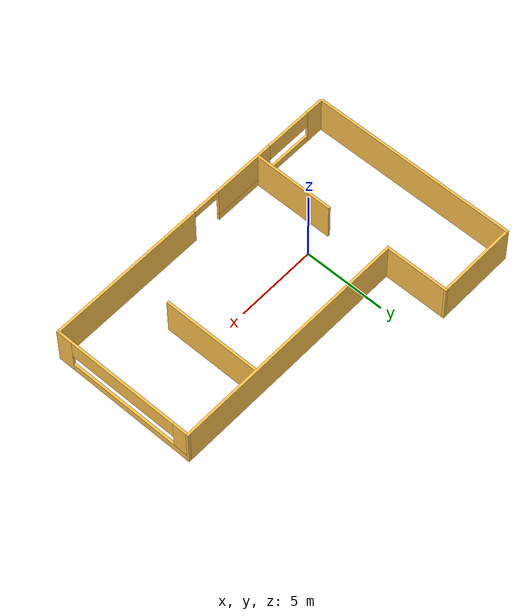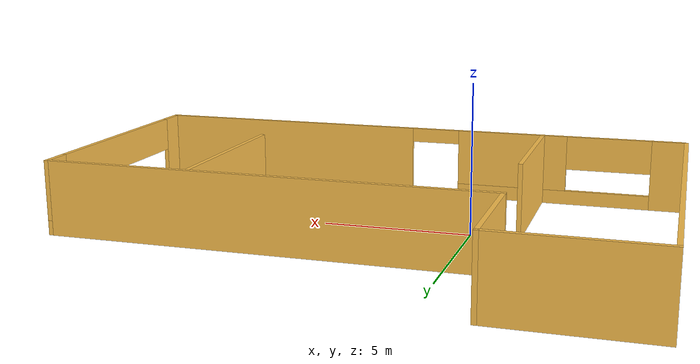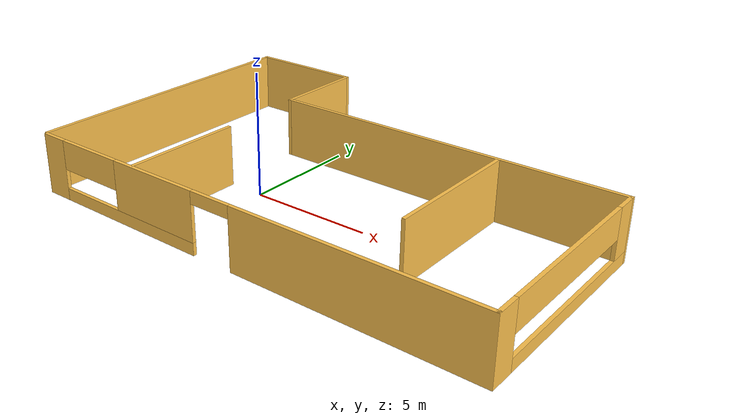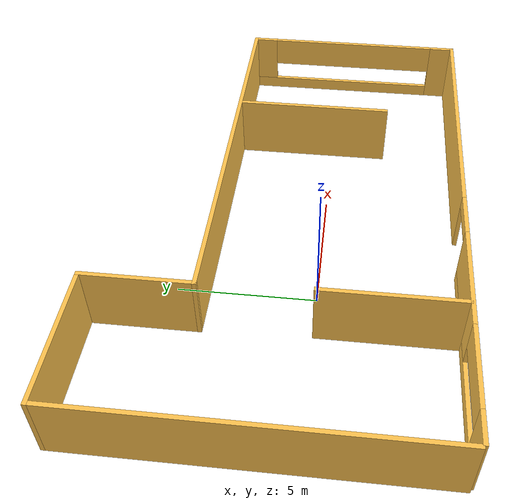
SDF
<?xml version='1.0'?>
<sdf version='1.6'>
  <model name='Building'>
    <pose frame=''>3.27386 1.36884 0 0 -0 0</pose>
    <link name='Wall_0'>
      <pose frame=''>0.05 -6.35 0 0 -0 0</pose>
      <visual name='Wall_0_Visual_0'>
        <pose frame=''>-9.30666 0 1.25 0 -0 0</pose>
        <geometry>
          <box>
            <size>1.13668 0.15 2.5</size>
          </box>
        </geometry>
        <material>
          <script>
            <uri>file://media/materials/scripts/gazebo.material</uri>
            <name>Gazebo/Grey</name>
          </script>
          <ambient>1 0.764706 0.305882 1</ambient>
        </material>
        <meta>
          <layer>0</layer>
        </meta>
      </visual>
      <collision name='Wall_0_Collision_0'>
        <geometry>
          <box>
            <size>1.13668 0.15 2.5</size>
          </box>
        </geometry>
        <pose frame=''>-9.30666 0 1.25 0 -0 0</pose>
      </collision>
      <visual name='Wall_0_Visual_1'>
        <pose frame=''>4.90959 0 1.25 0 -0 0</pose>
        <geometry>
          <box>
            <size>9.93081 0.15 2.5</size>
          </box>
        </geometry>
        <material>
          <script>
            <uri>file://media/materials/scripts/gazebo.material</uri>
            <name>Gazebo/Grey</name>
          </script>
          <ambient>1 0.764706 0.305882 1</ambient>
        </material>
        <meta>
          <layer>0</layer>
        </meta>
      </visual>
      <collision name='Wall_0_Collision_1'>
        <geometry>
          <box>
            <size>9.93081 0.15 2.5</size>
          </box>
        </geometry>
        <pose frame=''>4.90959 0 1.25 0 -0 0</pose>
      </collision>
      <visual name='Wall_0_Visual_2'>
        <pose frame=''>-5.27291 0 0.25 0 -0 0</pose>
        <geometry>
          <box>
            <size>6.93082 0.15 0.5</size>
          </box>
        </geometry>
        <material>
          <script>
            <uri>file://media/materials/scripts/gazebo.material</uri>
            <name>Gazebo/Grey</name>
          </script>
          <ambient>1 0.764706 0.305882 1</ambient>
        </material>
        <meta>
          <layer>0</layer>
        </meta>
      </visual>
      <collision name='Wall_0_Collision_2'>
        <geometry>
          <box>
            <size>6.93082 0.15 0.5</size>
          </box>
        </geometry>
        <pose frame=''>-5.27291 0 0.25 0 -0 0</pose>
      </collision>
      <visual name='Wall_0_Visual_3'>
        <pose frame=''>-3.79309 0 1.5 0 -0 0</pose>
        <geometry>
          <box>
            <size>3.97117 0.15 2</size>
          </box>
        </geometry>
        <material>
          <script>
            <uri>file://media/materials/scripts/gazebo.material</uri>
            <name>Gazebo/Grey</name>
          </script>
          <ambient>1 0.764706 0.305882 1</ambient>
        </material>
        <meta>
          <layer>0</layer>
        </meta>
      </visual>
      <collision name='Wall_0_Collision_3'>
        <geometry>
          <box>
            <size>3.97117 0.15 2</size>
          </box>
        </geometry>
        <pose frame=''>-3.79309 0 1.5 0 -0 0</pose>
      </collision>
      <visual name='Wall_0_Visual_4'>
        <pose frame=''>-7.2585 0 1.9 0 -0 0</pose>
        <geometry>
          <box>
            <size>2.95964 0.15 1.2</size>
          </box>
        </geometry>
        <material>
          <script>
            <uri>file://media/materials/scripts/gazebo.material</uri>
            <name>Gazebo/Grey</name>
          </script>
          <ambient>1 0.764706 0.305882 1</ambient>
        </material>
        <meta>
          <layer>0</layer>
        </meta>
      </visual>
      <collision name='Wall_0_Collision_4'>
        <geometry>
          <box>
            <size>2.95964 0.15 1.2</size>
          </box>
        </geometry>
        <pose frame=''>-7.2585 0 1.9 0 -0 0</pose>
      </collision>
      <visual name='Wall_0_Visual_5'>
        <pose frame=''>-0.931658 0 2.25 0 -0 0</pose>
        <geometry>
          <box>
            <size>1.75169 0.15 0.5</size>
          </box>
        </geometry>
        <material>
          <script>
            <uri>file://media/materials/scripts/gazebo.material</uri>
            <name>Gazebo/Grey</name>
          </script>
          <ambient>1 0.764706 0.305882 1</ambient>
        </material>
        <meta>
          <layer>0</layer>
        </meta>
      </visual>
      <collision name='Wall_0_Collision_5'>
        <geometry>
          <box>
            <size>1.75169 0.15 0.5</size>
          </box>
        </geometry>
        <pose frame=''>-0.931658 0 2.25 0 -0 0</pose>
      </collision>
    </link>
    <link name='Wall_1'>
      <pose frame=''>9.85 -1.925 0 0 -0 1.5708</pose>
      <visual name='Wall_1_Visual_0'>
        <pose frame=''>-3.98341 0 1.25 0 -0 0</pose>
        <geometry>
          <box>
            <size>1.03318 0.15 2.5</size>
          </box>
        </geometry>
        <material>
          <script>
            <uri>file://media/materials/scripts/gazebo.material</uri>
            <name>Gazebo/Grey</name>
          </script>
          <ambient>1 0.764706 0.305882 1</ambient>
        </material>
        <meta>
          <layer>0</layer>
        </meta>
      </visual>
      <collision name='Wall_1_Collision_0'>
        <geometry>
          <box>
            <size>1.03318 0.15 2.5</size>
          </box>
        </geometry>
        <pose frame=''>-3.98341 0 1.25 0 -0 0</pose>
      </collision>
      <visual name='Wall_1_Visual_1'>
        <pose frame=''>0.516591 0 0.25 0 -0 0</pose>
        <geometry>
          <box>
            <size>7.96682 0.15 0.5</size>
          </box>
        </geometry>
        <material>
          <script>
            <uri>file://media/materials/scripts/gazebo.material</uri>
            <name>Gazebo/Grey</name>
          </script>
          <ambient>1 0.764706 0.305882 1</ambient>
        </material>
        <meta>
          <layer>0</layer>
        </meta>
      </visual>
      <collision name='Wall_1_Collision_1'>
        <geometry>
          <box>
            <size>7.96682 0.15 0.5</size>
          </box>
        </geometry>
        <pose frame=''>0.516591 0 0.25 0 -0 0</pose>
      </collision>
      <visual name='Wall_1_Visual_2'>
        <pose frame=''>3.98876 0 1.5 0 -0 0</pose>
        <geometry>
          <box>
            <size>1.02248 0.15 2</size>
          </box>
        </geometry>
        <material>
          <script>
            <uri>file://media/materials/scripts/gazebo.material</uri>
            <name>Gazebo/Grey</name>
          </script>
          <ambient>1 0.764706 0.305882 1</ambient>
        </material>
        <meta>
          <layer>0</layer>
        </meta>
      </visual>
      <collision name='Wall_1_Collision_2'>
        <geometry>
          <box>
            <size>1.02248 0.15 2</size>
          </box>
        </geometry>
        <pose frame=''>3.98876 0 1.5 0 -0 0</pose>
      </collision>
      <visual name='Wall_1_Visual_3'>
        <pose frame=''>0.00535 0 1.9 0 -0 0</pose>
        <geometry>
          <box>
            <size>6.94433 0.15 1.2</size>
          </box>
        </geometry>
        <material>
          <script>
            <uri>file://media/materials/scripts/gazebo.material</uri>
            <name>Gazebo/Grey</name>
          </script>
          <ambient>1 0.764706 0.305882 1</ambient>
        </material>
        <meta>
          <layer>0</layer>
        </meta>
      </visual>
      <collision name='Wall_1_Collision_3'>
        <geometry>
          <box>
            <size>6.94433 0.15 1.2</size>
          </box>
        </geometry>
        <pose frame=''>0.00535 0 1.9 0 -0 0</pose>
      </collision>
    </link>
    <link name='Wall_2'>
      <collision name='Wall_2_Collision'>
        <geometry>
          <box>
            <size>15 0.15 2.5</size>
          </box>
        </geometry>
        <pose frame=''>0 0 1.25 0 -0 0</pose>
      </collision>
      <visual name='Wall_2_Visual'>
        <pose frame=''>0 0 1.25 0 -0 0</pose>
        <geometry>
          <box>
            <size>15 0.15 2.5</size>
          </box>
        </geometry>
        <material>
          <script>
            <uri>file://media/materials/scripts/gazebo.material</uri>
            <name>Gazebo/Grey</name>
          </script>
          <ambient>1 0.764706 0.305882 1</ambient>
        </material>
        <meta>
          <layer>0</layer>
        </meta>
      </visual>
      <pose frame=''>2.425 2.5 0 0 -0 3.14159</pose>
    </link>
    <link name='Wall_3'>
      <collision name='Wall_3_Collision'>
        <geometry>
          <box>
            <size>4 0.15 2.5</size>
          </box>
        </geometry>
        <pose frame=''>0 0 1.25 0 -0 0</pose>
      </collision>
      <visual name='Wall_3_Visual'>
        <pose frame=''>0 0 1.25 0 -0 0</pose>
        <geometry>
          <box>
            <size>4 0.15 2.5</size>
          </box>
        </geometry>
        <material>
          <script>
            <uri>file://media/materials/scripts/gazebo.material</uri>
            <name>Gazebo/Grey</name>
          </script>
          <ambient>1 0.764706 0.305882 1</ambient>
        </material>
        <meta>
          <layer>0</layer>
        </meta>
      </visual>
      <pose frame=''>-5 4.425 0 0 -0 1.5708</pose>
    </link>
    <link name='Wall_4'>
      <collision name='Wall_4_Collision'>
        <geometry>
          <box>
            <size>5 0.15 2.5</size>
          </box>
        </geometry>
        <pose frame=''>0 0 1.25 0 -0 0</pose>
      </collision>
      <visual name='Wall_4_Visual'>
        <pose frame=''>0 0 1.25 0 -0 0</pose>
        <geometry>
          <box>
            <size>5 0.15 2.5</size>
          </box>
        </geometry>
        <material>
          <script>
            <uri>file://media/materials/scripts/gazebo.material</uri>
            <name>Gazebo/Grey</name>
          </script>
          <ambient>1 0.764706 0.305882 1</ambient>
        </material>
        <meta>
          <layer>0</layer>
        </meta>
      </visual>
      <pose frame=''>-7.425 6.35 0 0 -0 3.14159</pose>
    </link>
    <link name='Wall_5'>
      <collision name='Wall_5_Collision'>
        <geometry>
          <box>
            <size>12.75 0.15 2.5</size>
          </box>
        </geometry>
        <pose frame=''>0 0 1.25 0 -0 0</pose>
      </collision>
      <visual name='Wall_5_Visual'>
        <pose frame=''>0 0 1.25 0 -0 0</pose>
        <geometry>
          <box>
            <size>12.75 0.15 2.5</size>
          </box>
        </geometry>
        <material>
          <script>
            <uri>file://media/materials/scripts/gazebo.material</uri>
            <name>Gazebo/Grey</name>
          </script>
          <ambient>1 0.764706 0.305882 1</ambient>
        </material>
        <meta>
          <layer>0</layer>
        </meta>
      </visual>
      <pose frame=''>-9.85 0.05 0 0 -0 -1.5708</pose>
    </link>
    <link name='Wall_7'>
      <collision name='Wall_7_Collision'>
        <geometry>
          <box>
            <size>5 0.15 2.5</size>
          </box>
        </geometry>
        <pose frame=''>0 0 1.25 0 -0 0</pose>
      </collision>
      <visual name='Wall_7_Visual'>
        <pose frame=''>0 0 1.25 0 -0 0</pose>
        <geometry>
          <box>
            <size>5 0.15 2.5</size>
          </box>
        </geometry>
        <material>
          <script>
            <uri>file://media/materials/scripts/gazebo.material</uri>
            <name>Gazebo/Grey</name>
          </script>
          <ambient>1 0.764706 0.305882 1</ambient>
        </material>
        <meta>
          <layer>0</layer>
        </meta>
      </visual>
      <pose frame=''>-4.85114 -3.84435 0 0 -0 1.5708</pose>
    </link>
    <link name='Wall_9'>
      <collision name='Wall_9_Collision'>
        <geometry>
          <box>
            <size>6 0.15 2.5</size>
          </box>
        </geometry>
        <pose frame=''>0 0 1.25 0 -0 0</pose>
      </collision>
      <visual name='Wall_9_Visual'>
        <pose frame=''>0 0 1.25 0 -0 0</pose>
        <geometry>
          <box>
            <size>6 0.15 2.5</size>
          </box>
        </geometry>
        <material>
          <script>
            <uri>file://media/materials/scripts/gazebo.material</uri>
            <name>Gazebo/Grey</name>
          </script>
          <ambient>1 0.764706 0.305882 1</ambient>
        </material>
        <meta>
          <layer>0</layer>
        </meta>
      </visual>
      <pose frame=''>4.91288 -0.555783 0 0 -0 -1.5708</pose>
    </link>
    <static>1</static>
  </model>
</sdf>
